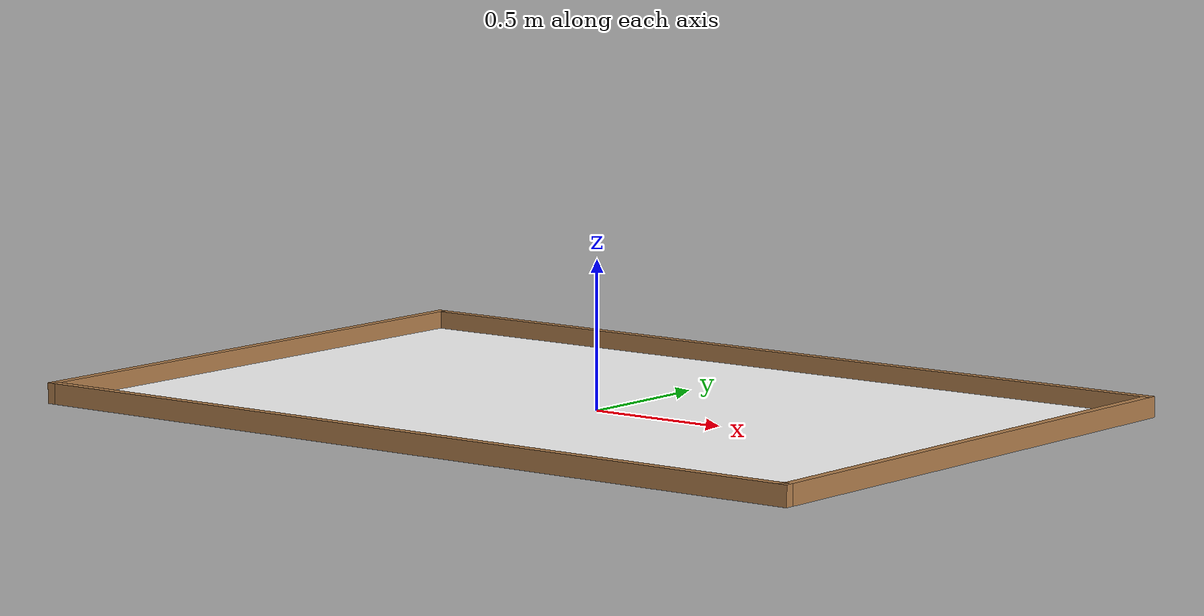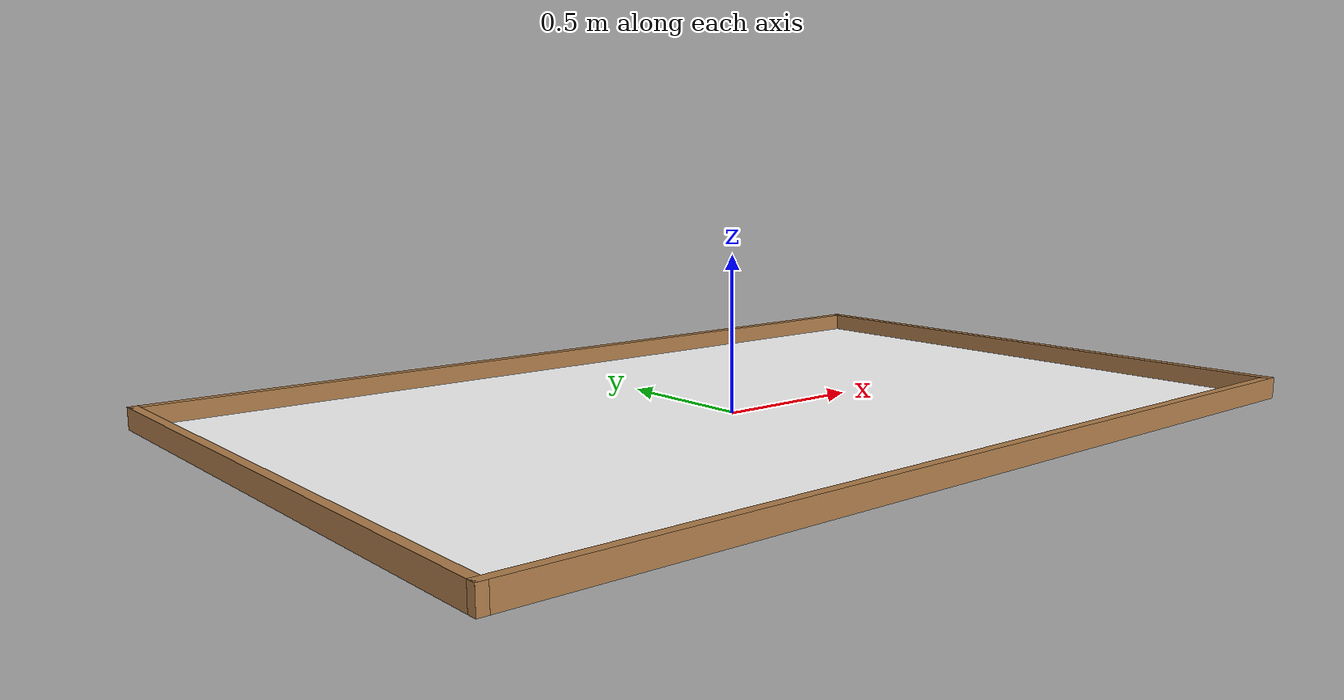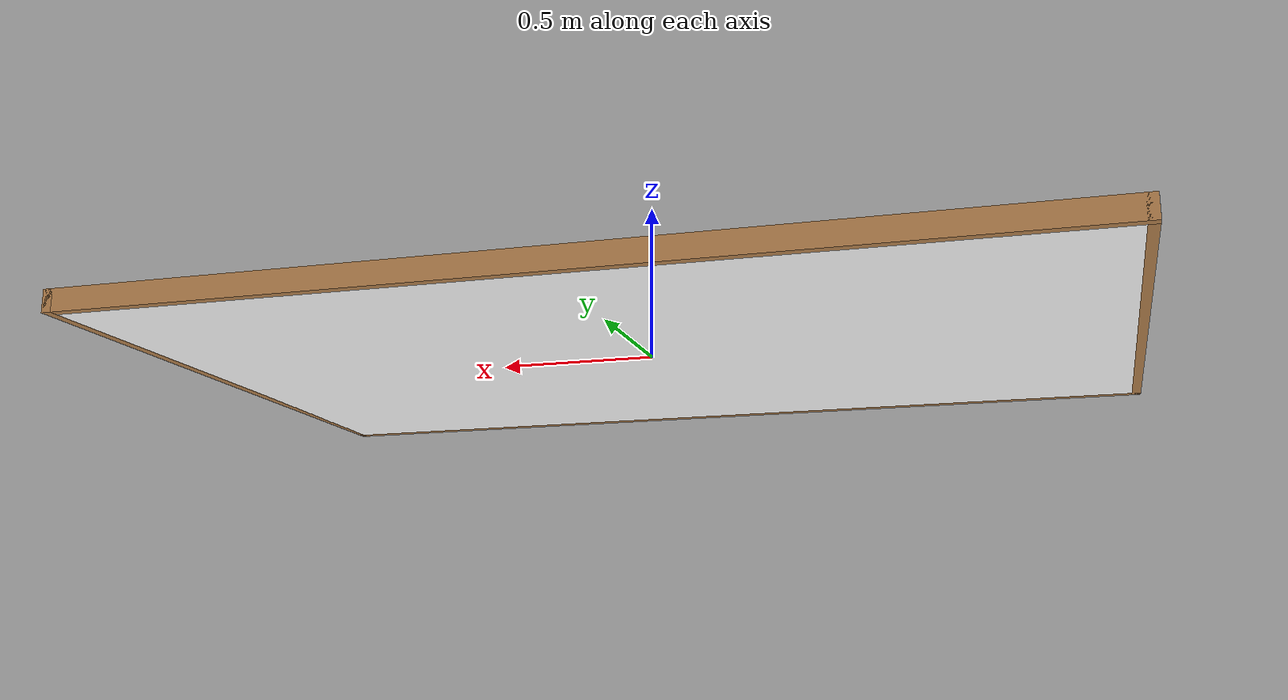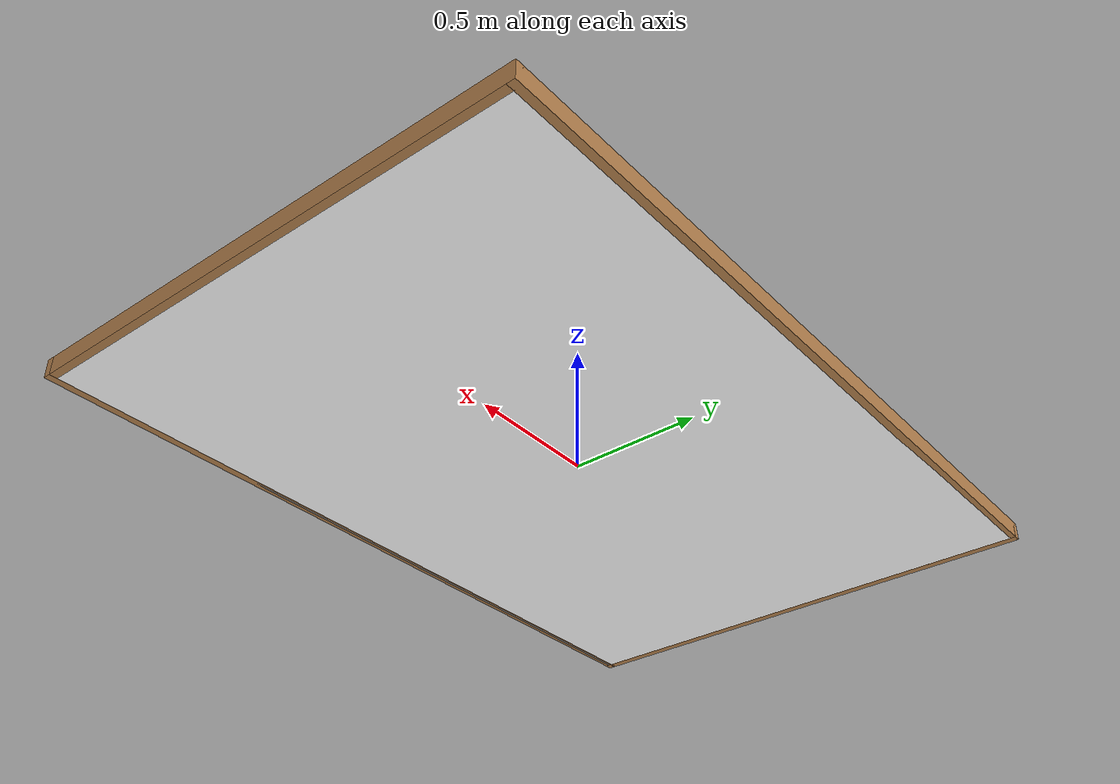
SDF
<?xml version='1.0'?>
<sdf version='1.7'>
  <model name='Building_Tablero'>
    <link name='Wall_0'>
      <pose>0 1 0 0 -0 0</pose>
      <self_collide>0</self_collide>
      <enable_wind>0</enable_wind>
      <kinematic>0</kinematic>
      <visual name='Wall_0_Visual'>
        <pose>0 0 0.035 0 -0 0</pose>
        <geometry>
          <box>
            <size>3.03 0.03 0.07</size>
          </box>
        </geometry>
        <material>
          <script>
            <uri>file://media/materials/scripts/gazebo.material</uri>
            <name>Gazebo/Wood</name>
          </script>
          <ambient>1 1 1 1</ambient>
          <shader type='pixel'/>
        </material>
        <meta>
          <layer>0</layer>
        </meta>
        <transparency>0</transparency>
        <cast_shadows>1</cast_shadows>
      </visual>
      <collision name='Wall_0_Collision'>
        <laser_retro>0</laser_retro>
        <max_contacts>10</max_contacts>
        <pose>0 0 0.035 0 -0 0</pose>
        <geometry>
          <box>
            <size>3.03 0.03 0.07</size>
          </box>
        </geometry>
        <surface>
          <friction>
            <ode>
              <mu>1</mu>
              <mu2>1</mu2>
              <fdir1>0 0 0</fdir1>
              <slip1>0</slip1>
              <slip2>0</slip2>
            </ode>
            <torsional>
              <coefficient>1</coefficient>
              <patch_radius>0</patch_radius>
              <surface_radius>0</surface_radius>
              <use_patch_radius>1</use_patch_radius>
              <ode>
                <slip>0</slip>
              </ode>
            </torsional>
          </friction>
          <bounce>
            <restitution_coefficient>0</restitution_coefficient>
            <threshold>1e+06</threshold>
          </bounce>
          <contact>
            <collide_without_contact>0</collide_without_contact>
            <collide_without_contact_bitmask>1</collide_without_contact_bitmask>
            <collide_bitmask>1</collide_bitmask>
            <ode>
              <soft_cfm>0</soft_cfm>
              <soft_erp>0.2</soft_erp>
              <kp>1e+13</kp>
              <kd>1</kd>
              <max_vel>0.01</max_vel>
              <min_depth>0</min_depth>
            </ode>
            <bullet>
              <split_impulse>1</split_impulse>
              <split_impulse_penetration_threshold>-0.01</split_impulse_penetration_threshold>
              <soft_cfm>0</soft_cfm>
              <soft_erp>0.2</soft_erp>
              <kp>1e+13</kp>
              <kd>1</kd>
            </bullet>
          </contact>
        </surface>
      </collision>
    </link>
    <link name='Wall_1'>
      <pose>1.5 0 0 0 0 -1.5708</pose>
      <self_collide>0</self_collide>
      <enable_wind>0</enable_wind>
      <kinematic>0</kinematic>
      <visual name='Wall_1_Visual'>
        <pose>0 0 0.035 0 -0 0</pose>
        <geometry>
          <box>
            <size>2.03 0.03 0.07</size>
          </box>
        </geometry>
        <material>
          <script>
            <uri>file://media/materials/scripts/gazebo.material</uri>
            <name>Gazebo/Wood</name>
          </script>
          <ambient>1 1 1 1</ambient>
          <shader type='pixel'/>
        </material>
        <meta>
          <layer>0</layer>
        </meta>
        <transparency>0</transparency>
        <cast_shadows>1</cast_shadows>
      </visual>
      <collision name='Wall_1_Collision'>
        <laser_retro>0</laser_retro>
        <max_contacts>10</max_contacts>
        <pose>0 0 0.035 0 -0 0</pose>
        <geometry>
          <box>
            <size>2.03 0.03 0.07</size>
          </box>
        </geometry>
        <surface>
          <friction>
            <ode>
              <mu>1</mu>
              <mu2>1</mu2>
              <fdir1>0 0 0</fdir1>
              <slip1>0</slip1>
              <slip2>0</slip2>
            </ode>
            <torsional>
              <coefficient>1</coefficient>
              <patch_radius>0</patch_radius>
              <surface_radius>0</surface_radius>
              <use_patch_radius>1</use_patch_radius>
              <ode>
                <slip>0</slip>
              </ode>
            </torsional>
          </friction>
          <bounce>
            <restitution_coefficient>0</restitution_coefficient>
            <threshold>1e+06</threshold>
          </bounce>
          <contact>
            <collide_without_contact>0</collide_without_contact>
            <collide_without_contact_bitmask>1</collide_without_contact_bitmask>
            <collide_bitmask>1</collide_bitmask>
            <ode>
              <soft_cfm>0</soft_cfm>
              <soft_erp>0.2</soft_erp>
              <kp>1e+13</kp>
              <kd>1</kd>
              <max_vel>0.01</max_vel>
              <min_depth>0</min_depth>
            </ode>
            <bullet>
              <split_impulse>1</split_impulse>
              <split_impulse_penetration_threshold>-0.01</split_impulse_penetration_threshold>
              <soft_cfm>0</soft_cfm>
              <soft_erp>0.2</soft_erp>
              <kp>1e+13</kp>
              <kd>1</kd>
            </bullet>
          </contact>
        </surface>
      </collision>
    </link>
    <link name='Wall_2'>
      <pose>0 -1 0 0 -0 3.14159</pose>
      <self_collide>0</self_collide>
      <enable_wind>0</enable_wind>
      <kinematic>0</kinematic>
      <visual name='Wall_2_Visual'>
        <pose>0 0 0.035 0 -0 0</pose>
        <geometry>
          <box>
            <size>3.03 0.03 0.07</size>
          </box>
        </geometry>
        <material>
          <script>
            <uri>file://media/materials/scripts/gazebo.material</uri>
            <name>Gazebo/Wood</name>
          </script>
          <ambient>1 1 1 1</ambient>
          <shader type='pixel'/>
        </material>
        <meta>
          <layer>0</layer>
        </meta>
        <transparency>0</transparency>
        <cast_shadows>1</cast_shadows>
      </visual>
      <collision name='Wall_2_Collision'>
        <laser_retro>0</laser_retro>
        <max_contacts>10</max_contacts>
        <pose>0 0 0.035 0 -0 0</pose>
        <geometry>
          <box>
            <size>3.03 0.03 0.07</size>
          </box>
        </geometry>
        <surface>
          <friction>
            <ode>
              <mu>1</mu>
              <mu2>1</mu2>
              <fdir1>0 0 0</fdir1>
              <slip1>0</slip1>
              <slip2>0</slip2>
            </ode>
            <torsional>
              <coefficient>1</coefficient>
              <patch_radius>0</patch_radius>
              <surface_radius>0</surface_radius>
              <use_patch_radius>1</use_patch_radius>
              <ode>
                <slip>0</slip>
              </ode>
            </torsional>
          </friction>
          <bounce>
            <restitution_coefficient>0</restitution_coefficient>
            <threshold>1e+06</threshold>
          </bounce>
          <contact>
            <collide_without_contact>0</collide_without_contact>
            <collide_without_contact_bitmask>1</collide_without_contact_bitmask>
            <collide_bitmask>1</collide_bitmask>
            <ode>
              <soft_cfm>0</soft_cfm>
              <soft_erp>0.2</soft_erp>
              <kp>1e+13</kp>
              <kd>1</kd>
              <max_vel>0.01</max_vel>
              <min_depth>0</min_depth>
            </ode>
            <bullet>
              <split_impulse>1</split_impulse>
              <split_impulse_penetration_threshold>-0.01</split_impulse_penetration_threshold>
              <soft_cfm>0</soft_cfm>
              <soft_erp>0.2</soft_erp>
              <kp>1e+13</kp>
              <kd>1</kd>
            </bullet>
          </contact>
        </surface>
      </collision>
    </link>
    <link name='Wall_5'>
      <pose>-1.5 0 0 0 -0 1.5708</pose>
      <self_collide>0</self_collide>
      <enable_wind>0</enable_wind>
      <kinematic>0</kinematic>
      <visual name='Wall_5_Visual'>
        <pose>0 0 0.035 0 -0 0</pose>
        <geometry>
          <box>
            <size>2.03 0.03 0.07</size>
          </box>
        </geometry>
        <material>
          <script>
            <uri>file://media/materials/scripts/gazebo.material</uri>
            <name>Gazebo/Wood</name>
          </script>
          <ambient>1 1 1 1</ambient>
          <shader type='pixel'/>
        </material>
        <meta>
          <layer>0</layer>
        </meta>
        <transparency>0</transparency>
        <cast_shadows>1</cast_shadows>
      </visual>
      <collision name='Wall_5_Collision'>
        <laser_retro>0</laser_retro>
        <max_contacts>10</max_contacts>
        <pose>0 0 0.035 0 -0 0</pose>
        <geometry>
          <box>
            <size>2.03 0.03 0.07</size>
          </box>
        </geometry>
        <surface>
          <friction>
            <ode>
              <mu>1</mu>
              <mu2>1</mu2>
              <fdir1>0 0 0</fdir1>
              <slip1>0</slip1>
              <slip2>0</slip2>
            </ode>
            <torsional>
              <coefficient>1</coefficient>
              <patch_radius>0</patch_radius>
              <surface_radius>0</surface_radius>
              <use_patch_radius>1</use_patch_radius>
              <ode>
                <slip>0</slip>
              </ode>
            </torsional>
          </friction>
          <bounce>
            <restitution_coefficient>0</restitution_coefficient>
            <threshold>1e+06</threshold>
          </bounce>
          <contact>
            <collide_without_contact>0</collide_without_contact>
            <collide_without_contact_bitmask>1</collide_without_contact_bitmask>
            <collide_bitmask>1</collide_bitmask>
            <ode>
              <soft_cfm>0</soft_cfm>
              <soft_erp>0.2</soft_erp>
              <kp>1e+13</kp>
              <kd>1</kd>
              <max_vel>0.01</max_vel>
              <min_depth>0</min_depth>
            </ode>
            <bullet>
              <split_impulse>1</split_impulse>
              <split_impulse_penetration_threshold>-0.01</split_impulse_penetration_threshold>
              <soft_cfm>0</soft_cfm>
              <soft_erp>0.2</soft_erp>
              <kp>1e+13</kp>
              <kd>1</kd>
            </bullet>
          </contact>
        </surface>
      </collision>
    </link>
   <link name='link_0'>
      <inertial>
        <mass>10</mass> <inertia>
          <ixx>0.166667</ixx> <ixy>0</ixy> <ixz>0</ixz>
          <iyy>0.166667</iyy> <iyz>0</iyz>
          <izz>0.166667</izz>
        </inertia>
        <pose>0 0 0 0 -0 0</pose>
      </inertial>

      <pose>0 0 0.005 0 -0 0</pose>
      <gravity>1</gravity>
      <self_collide>0</self_collide>
      <kinematic>1</kinematic> <enable_wind>0</enable_wind>

      <visual name='visual'>
        <pose>0 0 0 0 -0 1.5708</pose>
        <geometry>
          <box>
            <size>2 3 0.01</size>
          </box>
        </geometry>
        <material>
          <script>
            <uri>model://Building_Tablero/materials/scripts</uri>
            <uri>model://Building_Tablero/materials/textures</uri>
            <name>Building_Tablero/ImagenSuelo</name>
          </script>
          <ambient>1 1 1 1</ambient>
          <diffuse>1 1 1 1</diffuse>
          <specular>0 0 0 1</specular>
          <emissive>0 0 0 1</emissive>
        </material>
        <transparency>0</transparency>
        <cast_shadows>1</cast_shadows>
      </visual>

      <collision name='collision'>
        <pose>0 0 0 0 -0 1.5708</pose>
        <geometry>
          <box>
            <size>2 3 0.01</size>
          </box>
        </geometry>
        <surface>
          <friction>
            <ode>
              <mu>100</mu>
              <mu2>50</mu2>
            </ode>
          </friction>
        </surface>
      </collision>
    </link>
    <static>1</static>
    <allow_auto_disable>1</allow_auto_disable>
  </model>
</sdf>
